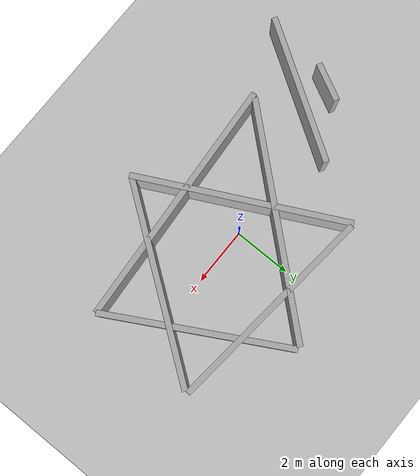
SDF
<?xml version='1.0' encoding='utf-8'?>
<sdf version="1.8">
  <world name="dfdsfsd">
    <physics name="1ms" type="ode">
      <max_step_size>0.001</max_step_size>
      <real_time_factor>1</real_time_factor>
      <real_time_update_rate>1000</real_time_update_rate>
    </physics>
    <plugin name="ignition::gazebo::systems::Physics" filename="ignition-gazebo-physics-system" />
    <plugin name="ignition::gazebo::systems::UserCommands" filename="ignition-gazebo-user-commands-system" />
    <plugin name="ignition::gazebo::systems::SceneBroadcaster" filename="ignition-gazebo-scene-broadcaster-system" />
    <plugin name="ignition::gazebo::systems::Contact" filename="ignition-gazebo-contact-system" />
    <plugin name="ignition::gazebo::systems::Sensors" filename="ignition-gazebo-sensors-system">
      <render_engine>ogre2</render_engine>
    </plugin>
    <gravity>0 0 -9.8</gravity>
    <magnetic_field>6e-06 2.3e-05 -4.2e-05</magnetic_field>
    <atmosphere type="adiabatic" />
    <scene>
      <ambient>0.4 0.4 0.4 1</ambient>
      <background>0.7 0.7 0.7 1</background>
      <shadows>true</shadows>
    </scene>
    <model name="ground_plane">
      <static>true</static>
      <link name="link">
        <collision name="collision">
          <geometry>
            <plane>
              <normal>0 0 1</normal>
              <size>100 100</size>
            </plane>
          </geometry>
          <surface>
            <friction>
              <ode />
            </friction>
            <bounce />
            <contact />
          </surface>
        </collision>
        <visual name="visual">
          <geometry>
            <plane>
              <normal>0 0 1</normal>
              <size>100 100</size>
            </plane>
          </geometry>
          <material>
            <ambient>0.8 0.8 0.8 1</ambient>
            <diffuse>0.8 0.8 0.8 1</diffuse>
            <specular>0.8 0.8 0.8 1</specular>
          </material>
        </visual>
        <pose>0 0 0 0 0 0</pose>
        <inertial>
          <pose>0 0 0 0 0 0</pose>
          <mass>1</mass>
          <inertia>
            <ixx>1</ixx>
            <ixy>0</ixy>
            <ixz>0</ixz>
            <iyy>1</iyy>
            <iyz>0</iyz>
            <izz>1</izz>
          </inertia>
        </inertial>
        <enable_wind>false</enable_wind>
      </link>
      <pose>0 0 0 0 0 0</pose>
      <self_collide>false</self_collide>
    </model>
    <light name="sun" type="directional">
      <pose>0 0 10 0 0 0</pose>
      <cast_shadows>true</cast_shadows>
      <intensity>1</intensity>
      <direction>-0.5 0.1 -0.9</direction>
      <diffuse>0.8 0.8 0.8 1</diffuse>
      <specular>0.2 0.2 0.2 1</specular>
      <attenuation>
        <range>1000</range>
        <linear>0.01</linear>
        <constant>0.9</constant>
        <quadratic>0.001</quadratic>
      </attenuation>
      <spot>
        <inner_angle>0</inner_angle>
        <outer_angle>0</outer_angle>
        <falloff>0</falloff>
      </spot>
    </light>
  <model name="wall_1"><static>true</static><pose>1.350 2.350 0.750 0 0 -0.096</pose><link name="link"><collision name="collision"><geometry><box><size>7.333 0.200 1.500</size></box></geometry></collision><visual name="visual"><geometry><box><size>7.333 0.200 1.500</size></box></geometry><material><ambient>0.7 0.7 0.7 1</ambient><diffuse>0.7 0.7 0.7 1</diffuse></material></visual></link></model><model name="wall_2"><static>true</static><pose>2.950 -0.900 0.750 0 0 -2.203</pose><link name="link"><collision name="collision"><geometry><box><size>6.940 0.200 1.500</size></box></geometry></collision><visual name="visual"><geometry><box><size>6.940 0.200 1.500</size></box></geometry><material><ambient>0.7 0.7 0.7 1</ambient><diffuse>0.7 0.7 0.7 1</diffuse></material></visual></link></model><model name="wall_3"><static>true</static><pose>-0.750 -0.550 0.750 0 0 2.041</pose><link name="link"><collision name="collision"><geometry><box><size>7.290 0.200 1.500</size></box></geometry></collision><visual name="visual"><geometry><box><size>7.290 0.200 1.500</size></box></geometry><material><ambient>0.7 0.7 0.7 1</ambient><diffuse>0.7 0.7 0.7 1</diffuse></material></visual></link></model><model name="wall_4"><static>true</static><pose>-0.950 0.750 0.750 0 0 -2.286</pose><link name="link"><collision name="collision"><geometry><box><size>8.081 0.200 1.500</size></box></geometry></collision><visual name="visual"><geometry><box><size>8.081 0.200 1.500</size></box></geometry><material><ambient>0.7 0.7 0.7 1</ambient><diffuse>0.7 0.7 0.7 1</diffuse></material></visual></link></model><model name="wall_5"><static>true</static><pose>0.600 -2.100 0.750 0 0 0.070</pose><link name="link"><collision name="collision"><geometry><box><size>8.621 0.200 1.500</size></box></geometry></collision><visual name="visual"><geometry><box><size>8.621 0.200 1.500</size></box></geometry><material><ambient>0.7 0.7 0.7 1</ambient><diffuse>0.7 0.7 0.7 1</diffuse></material></visual></link></model><model name="wall_6"><static>true</static><pose>3.350 1.000 0.750 0 0 -1.065</pose><link name="link"><collision name="collision"><geometry><box><size>6.401 0.200 1.500</size></box></geometry></collision><visual name="visual"><geometry><box><size>6.401 0.200 1.500</size></box></geometry><material><ambient>0.7 0.7 0.7 1</ambient><diffuse>0.7 0.7 0.7 1</diffuse></material></visual></link></model><model name="wall_7"><static>true</static><pose>-4.750 -1.350 0.750 0 0 -2.131</pose><link name="link"><collision name="collision"><geometry><box><size>5.077 0.200 1.500</size></box></geometry></collision><visual name="visual"><geometry><box><size>5.077 0.200 1.500</size></box></geometry><material><ambient>0.7 0.7 0.7 1</ambient><diffuse>0.7 0.7 0.7 1</diffuse></material></visual></link></model><model name="wall_8"><static>true</static><pose>-5.500 -0.800 0.750 0 0 1.107</pose><link name="link"><collision name="collision"><geometry><box><size>1.342 0.200 1.500</size></box></geometry></collision><visual name="visual"><geometry><box><size>1.342 0.200 1.500</size></box></geometry><material><ambient>0.7 0.7 0.7 1</ambient><diffuse>0.7 0.7 0.7 1</diffuse></material></visual></link></model></world>
</sdf>
